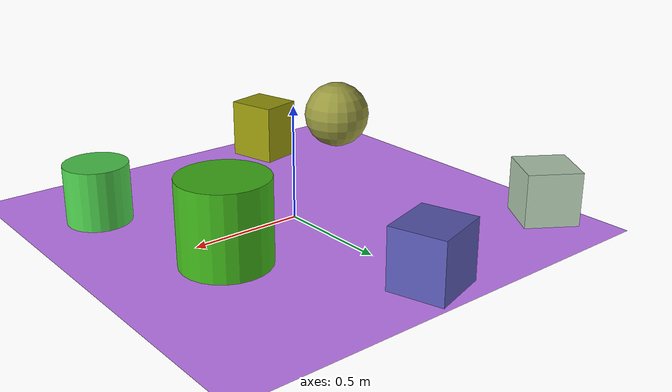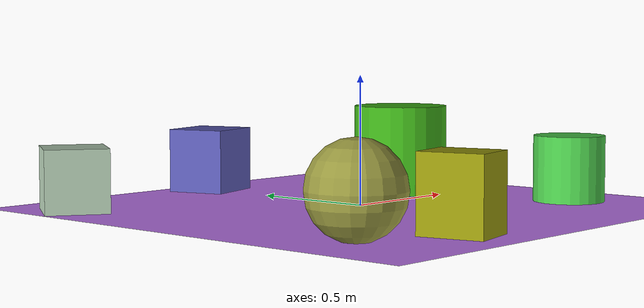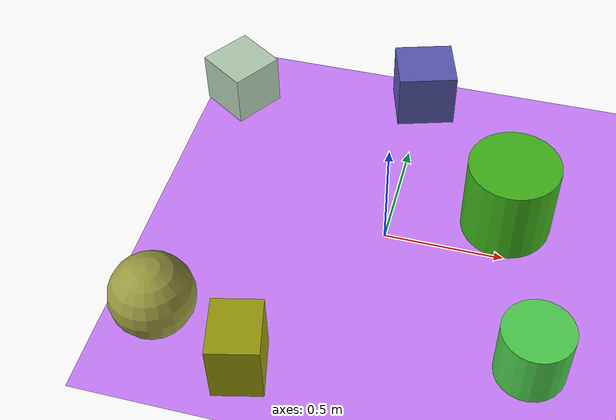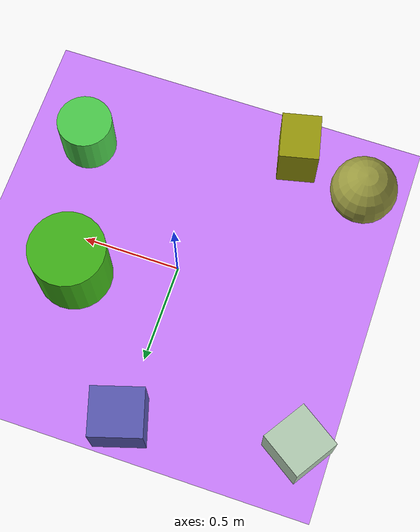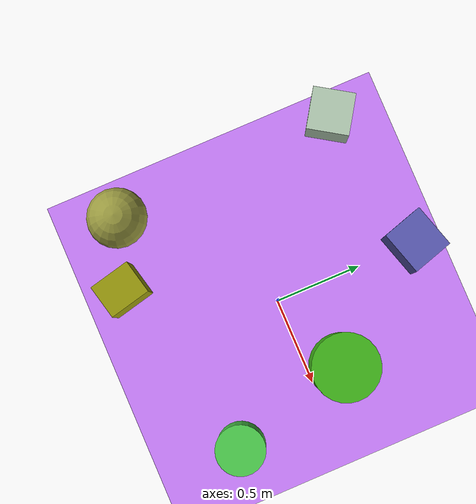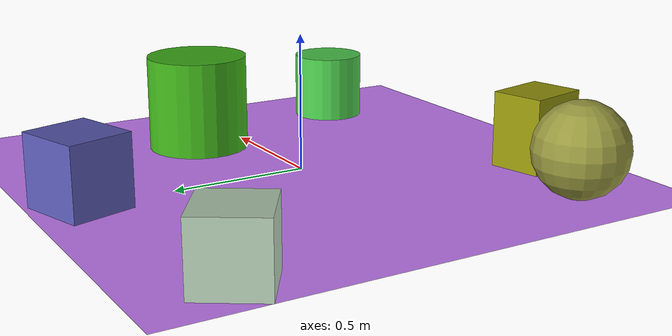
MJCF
<mujoco>
   <asset>
<texture type="skybox" builtin="gradient" rgb1="0.2 0.4 0.5" rgb2="0.1 0.8 0.6" width="256" height="256"/>
<texture name="flat_0" builtin="flat" rgb1="0.7 0.8 0.7" rgb2="0.7 0.8 0.7"  width="200" height="200"/>
<texture name="checker_1" builtin="checker" rgb1="0.6 0.4 0.9" rgb2="0.1 0.3 0.5" width="200" height="200"/>
<texture name="gradient_2" builtin="gradient" rgb1="0.6 0.6 0.1" rgb2="0.6 0.6 0.0" width="200" height="200"/>
<texture name="gradient_3" builtin="gradient" rgb1="0.6 0.4 0.1" rgb2="0.6 0.8 0.4" width="200" height="200"/>
<texture name="flat_4" builtin="flat" rgb1="0.3 0.8 0.3" rgb2="0.3 0.8 0.3"  width="200" height="200"/>
<texture name="checker_5" builtin="checker" rgb1="0.1 0.6 0.0" rgb2="0.4 0.8 0.2" width="200" height="200"/><material name="flat_0_mat" reflectance="0" texture="flat_0" texuniform="true"/>
<material name="checker_1_mat" reflectance="0" texrepeat="10 10" texture="checker_1" texuniform="false" />
<material name="gradient_2_mat" reflectance="0" texture="gradient_2" texuniform="true"/>
<material name="gradient_3_mat" reflectance="0" texture="gradient_3" texuniform="true"/>
<material name="flat_4_mat" reflectance="0" texture="flat_4" texuniform="true"/>
<material name="checker_5_mat" reflectance="0" texrepeat="5 5" texture="checker_5" texuniform="false" />
   </asset>

   <worldbody>
      <light diffuse=".9 .9 .9" pos="0 0 3" dir="0 0 -1"/>
     <geom type="plane" size="1 1 0.1" rgba="0.8 0.5 1.0 1"/>
<geom type="box" pos="-0.84 0.68 0.12" size="0.12 0.12 0.12" material="flat_0_mat" euler="0 0 57" />
<geom type="box" pos="-0.0 0.83 0.13" size="0.13 0.12 0.13" material="checker_1_mat" euler="0 0 17" />
<geom type="box" pos="-0.39 -0.77 0.14" size="0.1 0.12 0.14" material="gradient_2_mat" euler="0 0 13" />
<geom type="sphere" pos="-0.77 -0.64 0.17" size="0.17 0.17 0.17" material="gradient_3_mat" euler="0 0 52" />
<geom type="cylinder" pos="0.67 -0.51 0.13" size="0.14 0.13 0.13" material="flat_4_mat" euler="0 0 20" />
<geom type="cylinder" pos="0.48 0.19 0.18" size="0.19 0.18 0.18" material="checker_5_mat" euler="0 0 57" /><camera euler="60 0 180" fovy="60" name="camera1" pos="-0.2 -1.5 1"></camera>   </worldbody>
</mujoco>
